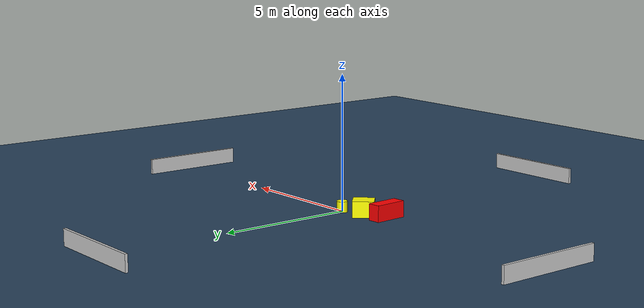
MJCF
<?xml version="1.0" ?>
<mujoco model="generated_environment">
  <option timestep="0.01" integrator="RK4" cone="elliptic"/>
  <default>
    <geom density="1"/>
  </default>
  <asset>
    <texture builtin="gradient" height="3072" name="skybox" rgb1="0.3 0.5 0.7" rgb2="0 0 0" type="skybox" width="512"/>
    <texture builtin="checker" height="300" name="groundplane" rgb1="0.2 0.3 0.4" rgb2="0.1 0.2 0.3" type="2d" width="300"/>
    <material name="groundplane" reflectance="0.2" texrepeat="5 5" texture="groundplane"/>
  </asset>
  <worldbody>
    <light dir="0 0 -1" directional="true" pos="0 0 1.5"/>
    <geom condim="3" friction="0.5 0.005 0.001" material="groundplane" name="floor" pos="0 0 0" size="0 0 0.05" type="plane"/>
    <body name="walls">
      <geom name="wall_1" condim="4" pos="-10.0 0.0 0.3" rgba="0.800000011920929 0.800000011920929 0.800000011920929 1.0" size="0.05 2.0 0.3" type="box"/>
      <geom name="wall_2" condim="4" pos="10.0 0.0 0.3" rgba="0.800000011920929 0.800000011920929 0.800000011920929 1.0" size="0.05 2.0 0.3" type="box"/>
      <geom name="wall_3" condim="4" pos="0.0 -10.0 0.3" rgba="0.800000011920929 0.800000011920929 0.800000011920929 1.0" size="2.0 0.05 0.3" type="box"/>
      <geom name="wall_4" condim="4" pos="0.0 10.0 0.3" rgba="0.800000011920929 0.800000011920929 0.800000011920929 1.0" size="2.0 0.05 0.3" type="box"/>
    </body>
    <body name="robot">
      <joint name="joint_x" type="slide" pos="0 0 0" axis="1 0 0"/>
      <joint name="joint_y" type="slide" pos="0 0 0" axis="0 1 0"/>
      <geom name="robot" type="cylinder" pos="0.0 0.0 0.2" size="0.2 0.2 0.0" mass="5.0" friction="1.0 0.005 0.0001" condim="4" rgba="1.0 1.0 0.0 1.0"/>
    </body>
    <body name="obstacle_1_movable">
      <geom name="obstacle_1_movable" condim="4" pos="-0.9861926351469548 -0.18525825602600737 0.3" euler="0 0 316.8358708009758" friction="0.0 0.005 0.001" rgba="1.0 1.0 0.0 1.0" size="0.3494319210381034 0.3932160550268183 0.3" type="box" mass="0.1"/>
      <joint type="free"/>
    </body>
    <body name="obstacle_2_static">
      <geom name="obstacle_2_static" condim="4" pos="-1.7907257802693812 -0.5623116698676611 0.3" euler="0 0 3.2827189750341867" friction="0.0 0.005 0.001" rgba="1.0 0.0 0.0 1.0" size="0.2390207415678579 0.6179792448282062 0.3" type="box"/>
    </body>
  </worldbody>
  <actuator>
    <motor name="actuator_x" joint="joint_x" gear="1" ctrlrange="-1 1"/>
    <motor name="actuator_y" joint="joint_y" gear="1" ctrlrange="-1 1"/>
  </actuator>
</mujoco>
